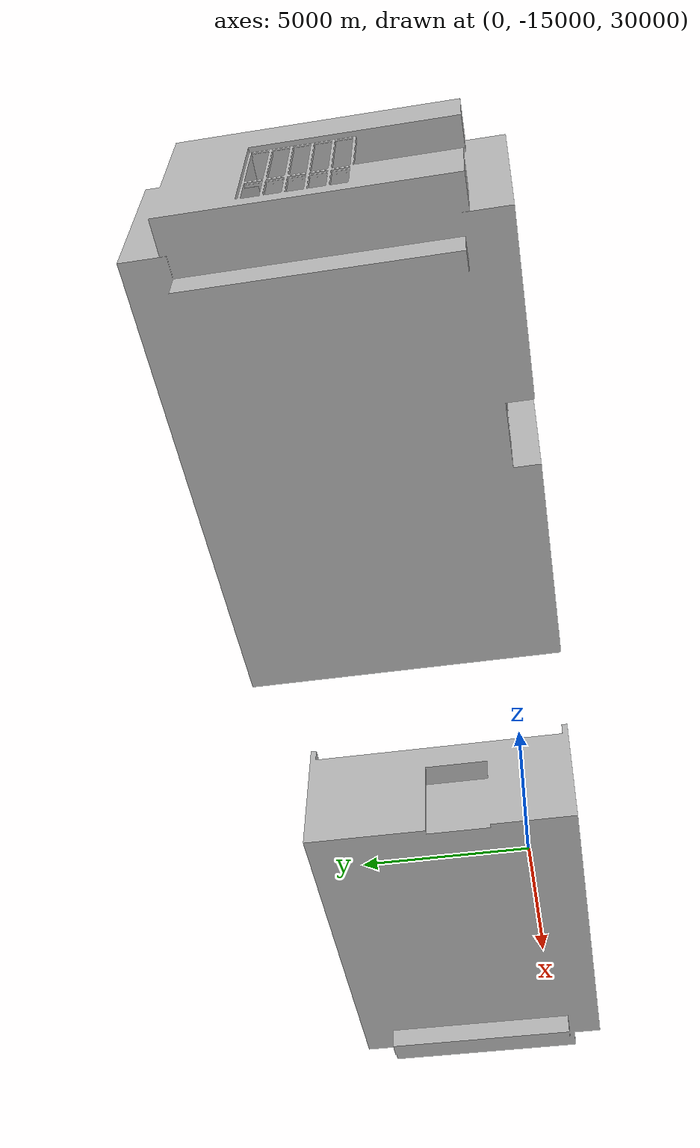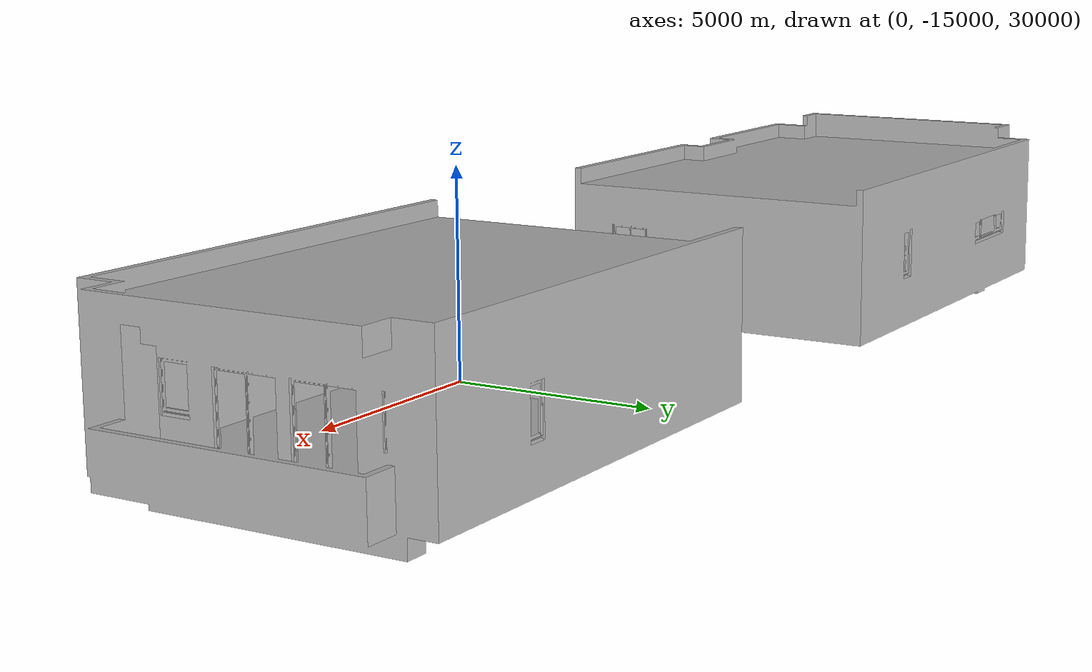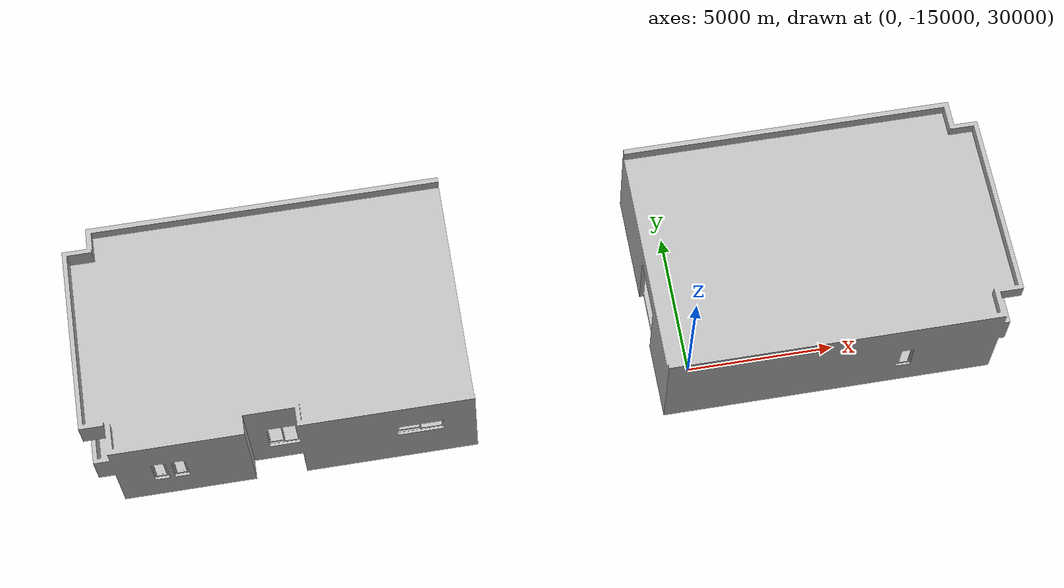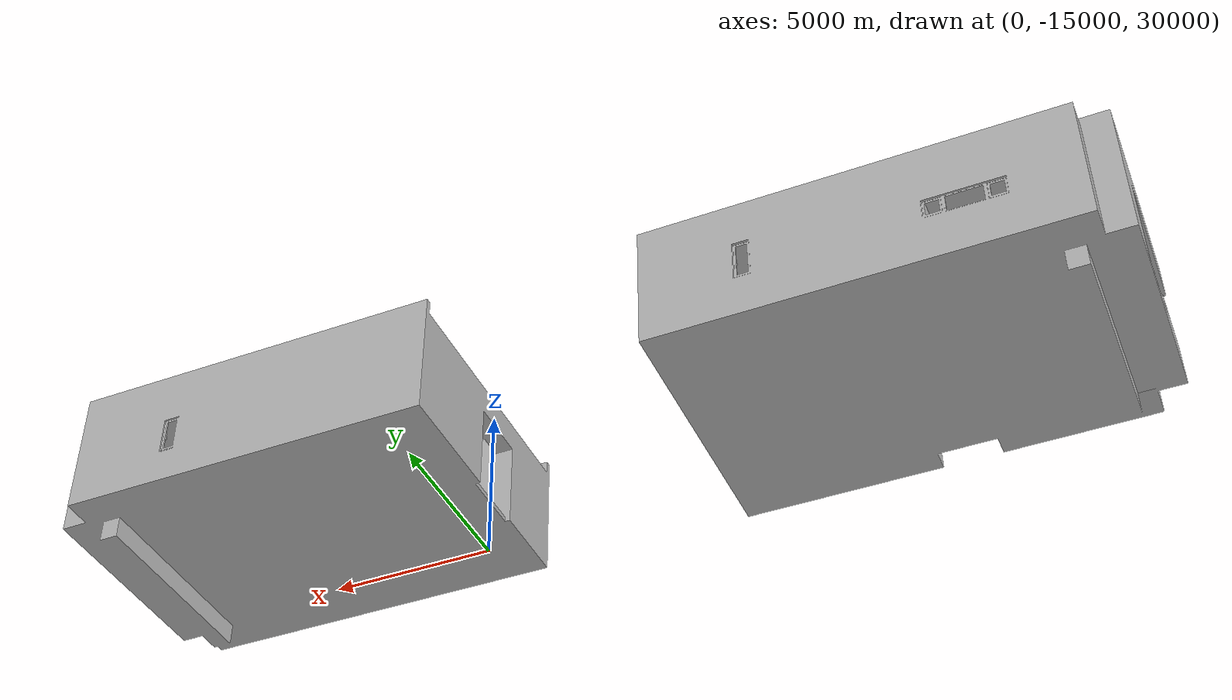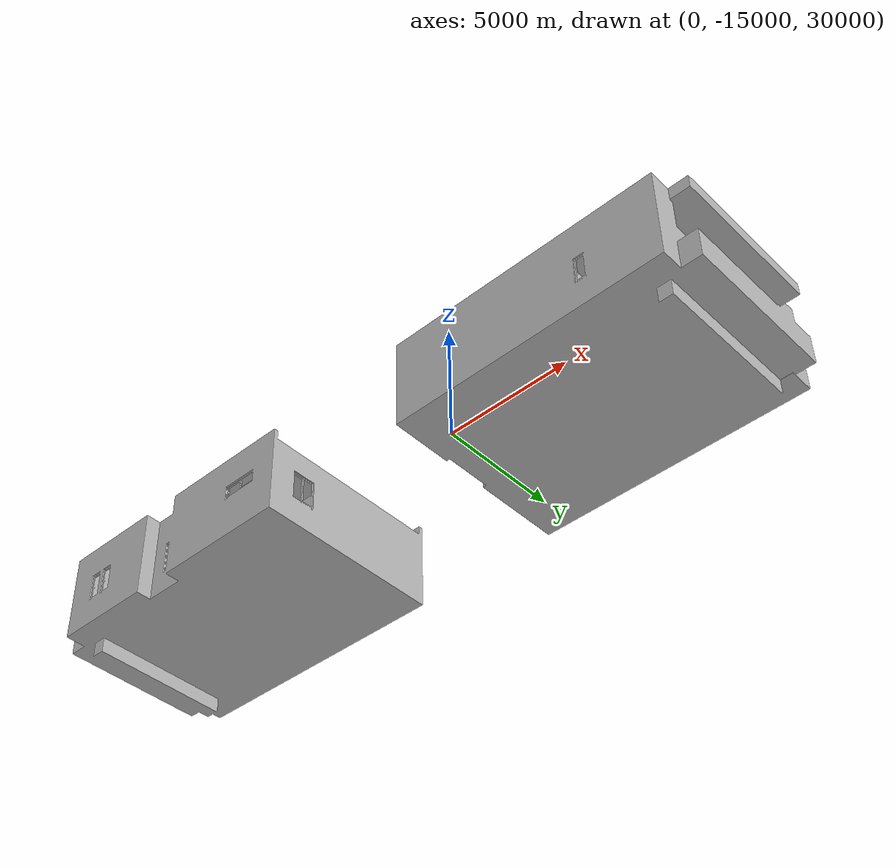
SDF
<?xml version='1.0'?>
<sdf version='1.0'>
    <model name="construction">
        <static>true</static>
        <link name='construction'>
            <pose>0 0 0 0 0 0</pose>

            <collision name='collision'>
                <geometry>
                    <box> 0 0 0 </box>
                </geometry>
            </collision>

            <visual name='visual'>
                <pose> 0 0 0 0 0 0</pose>
                <geometry>
                    <mesh><uri>model://construction/meshes/Day3.STL</uri></mesh>
                </geometry>
            </visual>
        </link>
    </model>
</sdf>
